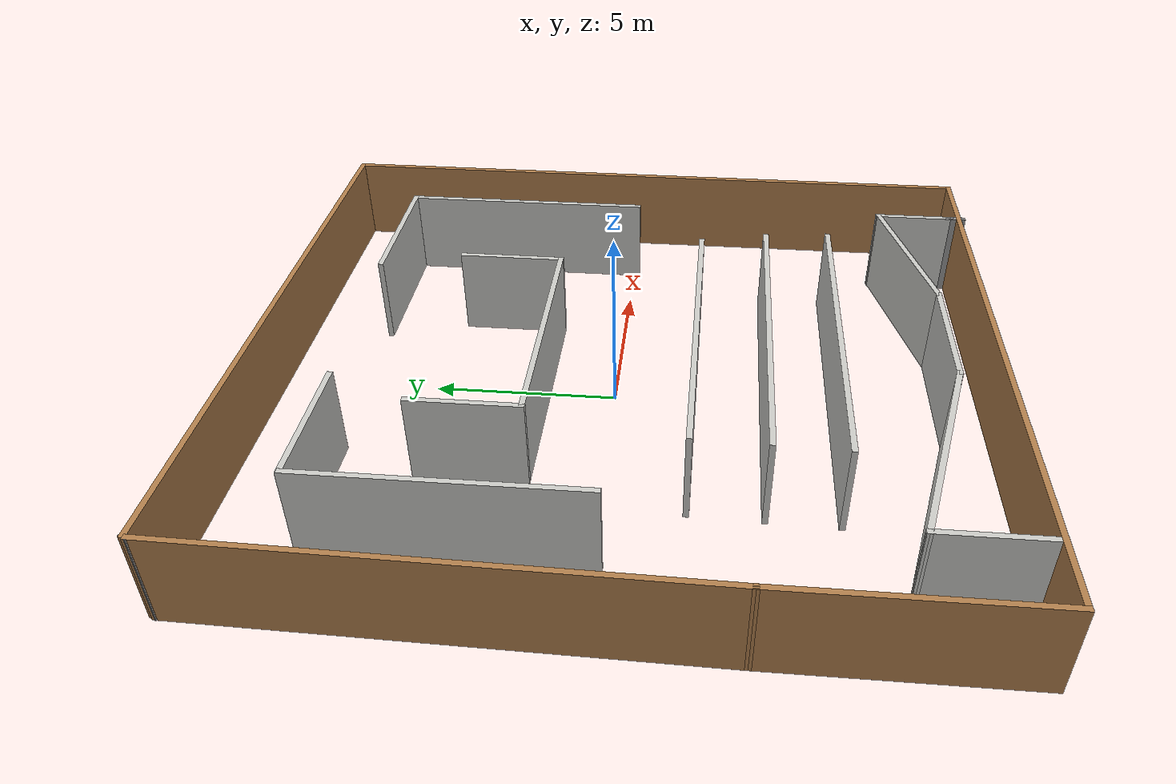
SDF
<?xml version='1.0'?>
<sdf version='1.7'>
  <model name='indoor.world'>
    <pose>-0.019262 -0.36575 0 0 -0 0</pose>
    <link name='Wall_10'>
      <collision name='Wall_10_Collision'>
        <geometry>
          <box>
            <size>13.0649 0.15 2.5</size>
          </box>
        </geometry>
        <pose>0 0 1.25 0 -0 0</pose>
      </collision>
      <visual name='Wall_10_Visual'>
        <pose>0 0 1.25 0 -0 0</pose>
        <geometry>
          <box>
            <size>13.0649 0.15 2.5</size>
          </box>
        </geometry>
        <material>
          <script>
            <uri>file://media/materials/scripts/gazebo.material</uri>
            <name>Gazebo/Wood</name>
          </script>
          <ambient>1 1 1 1</ambient>
        </material>
        <meta>
          <layer>0</layer>
        </meta>
      </visual>
      <pose>-8.69942 3.18069 0 0 -0 -1.58628</pose>
    </link>
    <link name='Wall_12'>
      <collision name='Wall_12_Collision'>
        <geometry>
          <box>
            <size>10 0.15 2.5</size>
          </box>
        </geometry>
        <pose>0 0 1.25 0 -0 0</pose>
      </collision>
      <visual name='Wall_12_Visual'>
        <pose>0 0 1.25 0 -0 0</pose>
        <geometry>
          <box>
            <size>10 0.15 2.5</size>
          </box>
        </geometry>
        <material>
          <script>
            <uri>file://media/materials/scripts/gazebo.material</uri>
            <name>Gazebo/CeilingTiled</name>
          </script>
          <ambient>1 1 1 1</ambient>
        </material>
        <meta>
          <layer>0</layer>
        </meta>
      </visual>
      <pose>0.416334 -5.54014 0 0 -0 0</pose>
    </link>
    <link name='Wall_14'>
      <collision name='Wall_14_Collision'>
        <geometry>
          <box>
            <size>9.75 0.15 2.5</size>
          </box>
        </geometry>
        <pose>0 0 1.25 0 -0 0</pose>
      </collision>
      <visual name='Wall_14_Visual'>
        <pose>0 0 1.25 0 -0 0</pose>
        <geometry>
          <box>
            <size>9.75 0.15 2.5</size>
          </box>
        </geometry>
        <material>
          <script>
            <uri>file://media/materials/scripts/gazebo.material</uri>
            <name>Gazebo/CeilingTiled</name>
          </script>
          <ambient>1 1 1 1</ambient>
        </material>
        <meta>
          <layer>0</layer>
        </meta>
      </visual>
      <pose>0.352862 -3.6943 0 0 -0 0</pose>
    </link>
    <link name='Wall_16'>
      <collision name='Wall_16_Collision'>
        <geometry>
          <box>
            <size>9.25 0.15 2.5</size>
          </box>
        </geometry>
        <pose>0 0 1.25 0 -0 0</pose>
      </collision>
      <visual name='Wall_16_Visual'>
        <pose>0 0 1.25 0 -0 0</pose>
        <geometry>
          <box>
            <size>9.25 0.15 2.5</size>
          </box>
        </geometry>
        <material>
          <script>
            <uri>file://media/materials/scripts/gazebo.material</uri>
            <name>Gazebo/CeilingTiled</name>
          </script>
          <ambient>1 1 1 1</ambient>
        </material>
        <meta>
          <layer>0</layer>
        </meta>
      </visual>
      <pose>0.16439 -1.78694 0 0 -0 0</pose>
    </link>
    <link name='Wall_18'>
      <collision name='Wall_18_Collision'>
        <geometry>
          <box>
            <size>7.25 0.15 2.5</size>
          </box>
        </geometry>
        <pose>0 0 1.25 0 -0 0</pose>
      </collision>
      <visual name='Wall_18_Visual'>
        <pose>0 0 1.25 0 -0 0</pose>
        <geometry>
          <box>
            <size>7.25 0.15 2.5</size>
          </box>
        </geometry>
        <material>
          <script>
            <uri>file://media/materials/scripts/gazebo.material</uri>
            <name>Gazebo/CeilingTiled</name>
          </script>
          <ambient>1 1 1 1</ambient>
        </material>
        <meta>
          <layer>0</layer>
        </meta>
      </visual>
      <pose>-6.3545 3.67043 0 0 -0 1.5708</pose>
    </link>
    <link name='Wall_19'>
      <collision name='Wall_19_Collision'>
        <geometry>
          <box>
            <size>3.75 0.15 2.5</size>
          </box>
        </geometry>
        <pose>0 0 1.25 0 -0 0</pose>
      </collision>
      <visual name='Wall_19_Visual'>
        <pose>0 0 1.25 0 -0 0</pose>
        <geometry>
          <box>
            <size>3.75 0.15 2.5</size>
          </box>
        </geometry>
        <material>
          <script>
            <uri>file://media/materials/scripts/gazebo.material</uri>
            <name>Gazebo/CeilingTiled</name>
          </script>
          <ambient>1 1 1 1</ambient>
        </material>
        <meta>
          <layer>0</layer>
        </meta>
      </visual>
      <pose>-4.5545 7.22043 0 0 -0 0</pose>
    </link>
    <link name='Wall_22'>
      <collision name='Wall_22_Collision'>
        <geometry>
          <box>
            <size>4.25 0.15 2.5</size>
          </box>
        </geometry>
        <pose>0 0 1.25 0 -0 0</pose>
      </collision>
      <visual name='Wall_22_Visual'>
        <pose>0 0 1.25 0 -0 0</pose>
        <geometry>
          <box>
            <size>4.25 0.15 2.5</size>
          </box>
        </geometry>
        <material>
          <script>
            <uri>file://media/materials/scripts/gazebo.material</uri>
            <name>Gazebo/CeilingTiled</name>
          </script>
          <ambient>1 1 1 1</ambient>
        </material>
        <meta>
          <layer>0</layer>
        </meta>
      </visual>
      <pose>4.61704 7.38072 0 0 -0 0</pose>
    </link>
    <link name='Wall_23'>
      <collision name='Wall_23_Collision'>
        <geometry>
          <box>
            <size>7.25 0.15 2.5</size>
          </box>
        </geometry>
        <pose>0 0 1.25 0 -0 0</pose>
      </collision>
      <visual name='Wall_23_Visual'>
        <pose>0 0 1.25 0 -0 0</pose>
        <geometry>
          <box>
            <size>7.25 0.15 2.5</size>
          </box>
        </geometry>
        <material>
          <script>
            <uri>file://media/materials/scripts/gazebo.material</uri>
            <name>Gazebo/CeilingTiled</name>
          </script>
          <ambient>1 1 1 1</ambient>
        </material>
        <meta>
          <layer>0</layer>
        </meta>
      </visual>
      <pose>6.66704 3.83072 0 0 -0 -1.5708</pose>
    </link>
    <link name='Wall_25'>
      <collision name='Wall_25_Collision'>
        <geometry>
          <box>
            <size>3 0.15 2.5</size>
          </box>
        </geometry>
        <pose>0 0 1.25 0 -0 0</pose>
      </collision>
      <visual name='Wall_25_Visual'>
        <pose>0 0 1.25 0 -0 0</pose>
        <geometry>
          <box>
            <size>3 0.15 2.5</size>
          </box>
        </geometry>
        <material>
          <script>
            <uri>file://media/materials/scripts/gazebo.material</uri>
            <name>Gazebo/CeilingTiled</name>
          </script>
          <ambient>1 1 1 1</ambient>
        </material>
        <meta>
          <layer>0</layer>
        </meta>
      </visual>
      <pose>-3.58575 3.67918 0 0 -0 -1.5708</pose>
    </link>
    <link name='Wall_26'>
      <collision name='Wall_26_Collision'>
        <geometry>
          <box>
            <size>7 0.15 2.5</size>
          </box>
        </geometry>
        <pose>0 0 1.25 0 -0 0</pose>
      </collision>
      <visual name='Wall_26_Visual'>
        <pose>0 0 1.25 0 -0 0</pose>
        <geometry>
          <box>
            <size>7 0.15 2.5</size>
          </box>
        </geometry>
        <material>
          <script>
            <uri>file://media/materials/scripts/gazebo.material</uri>
            <name>Gazebo/CeilingTiled</name>
          </script>
          <ambient>1 1 1 1</ambient>
        </material>
        <meta>
          <layer>0</layer>
        </meta>
      </visual>
      <pose>-0.160748 2.25419 0 0 -0 0</pose>
    </link>
    <link name='Wall_27'>
      <collision name='Wall_27_Collision'>
        <geometry>
          <box>
            <size>3 0.15 2.5</size>
          </box>
        </geometry>
        <pose>0 0 1.25 0 -0 0</pose>
      </collision>
      <visual name='Wall_27_Visual'>
        <pose>0 0 1.25 0 -0 0</pose>
        <geometry>
          <box>
            <size>3 0.15 2.5</size>
          </box>
        </geometry>
        <material>
          <script>
            <uri>file://media/materials/scripts/gazebo.material</uri>
            <name>Gazebo/CeilingTiled</name>
          </script>
          <ambient>1 1 1 1</ambient>
        </material>
        <meta>
          <layer>0</layer>
        </meta>
      </visual>
      <pose>3.26425 3.67918 0 0 -0 1.5708</pose>
    </link>
    <link name='Wall_29'>
      <collision name='Wall_29_Collision'>
        <geometry>
          <box>
            <size>2.75 0.15 2.5</size>
          </box>
        </geometry>
        <pose>0 0 1.25 0 -0 0</pose>
      </collision>
      <visual name='Wall_29_Visual'>
        <pose>0 0 1.25 0 -0 0</pose>
        <geometry>
          <box>
            <size>2.75 0.15 2.5</size>
          </box>
        </geometry>
        <material>
          <script>
            <uri>file://media/materials/scripts/gazebo.material</uri>
            <name>Gazebo/CeilingTiled</name>
          </script>
          <ambient>1 1 1 1</ambient>
        </material>
        <meta>
          <layer>0</layer>
        </meta>
      </visual>
      <pose>-6.96978 -8.17792 0 0 -0 1.5708</pose>
    </link>
    <link name='Wall_30'>
      <collision name='Wall_30_Collision'>
        <geometry>
          <box>
            <size>6 0.15 2.5</size>
          </box>
        </geometry>
        <pose>0 0 1.25 0 -0 0</pose>
      </collision>
      <visual name='Wall_30_Visual'>
        <pose>0 0 1.25 0 -0 0</pose>
        <geometry>
          <box>
            <size>6 0.15 2.5</size>
          </box>
        </geometry>
        <material>
          <script>
            <uri>file://media/materials/scripts/gazebo.material</uri>
            <name>Gazebo/CeilingTiled</name>
          </script>
          <ambient>1 1 1 1</ambient>
        </material>
        <meta>
          <layer>0</layer>
        </meta>
      </visual>
      <pose>-4.14445 -7.63497 0 0 -0 -0.261799</pose>
    </link>
    <link name='Wall_31'>
      <collision name='Wall_31_Collision'>
        <geometry>
          <box>
            <size>3.75 0.15 2.5</size>
          </box>
        </geometry>
        <pose>0 0 1.25 0 -0 0</pose>
      </collision>
      <visual name='Wall_31_Visual'>
        <pose>0 0 1.25 0 -0 0</pose>
        <geometry>
          <box>
            <size>3.75 0.15 2.5</size>
          </box>
        </geometry>
        <material>
          <script>
            <uri>file://media/materials/scripts/gazebo.material</uri>
            <name>Gazebo/CeilingTiled</name>
          </script>
          <ambient>1 1 1 1</ambient>
        </material>
        <meta>
          <layer>0</layer>
        </meta>
      </visual>
      <pose>0.480885 -8.39201 0 0 -0 0</pose>
    </link>
    <link name='Wall_32'>
      <collision name='Wall_32_Collision'>
        <geometry>
          <box>
            <size>4.75 0.15 2.5</size>
          </box>
        </geometry>
        <pose>0 0 1.25 0 -0 0</pose>
      </collision>
      <visual name='Wall_32_Visual'>
        <pose>0 0 1.25 0 -0 0</pose>
        <geometry>
          <box>
            <size>4.75 0.15 2.5</size>
          </box>
        </geometry>
        <material>
          <script>
            <uri>file://media/materials/scripts/gazebo.material</uri>
            <name>Gazebo/CeilingTiled</name>
          </script>
          <ambient>1 1 1 1</ambient>
        </material>
        <meta>
          <layer>0</layer>
        </meta>
      </visual>
      <pose>4.50251 -7.79673 0 0 -0 0.261799</pose>
    </link>
    <link name='Wall_33'>
      <collision name='Wall_33_Collision'>
        <geometry>
          <box>
            <size>2.25 0.15 2.5</size>
          </box>
        </geometry>
        <pose>0 0 1.25 0 -0 0</pose>
      </collision>
      <visual name='Wall_33_Visual'>
        <pose>0 0 1.25 0 -0 0</pose>
        <geometry>
          <box>
            <size>2.25 0.15 2.5</size>
          </box>
        </geometry>
        <material>
          <script>
            <uri>file://media/materials/scripts/gazebo.material</uri>
            <name>Gazebo/CeilingTiled</name>
          </script>
          <ambient>1 1 1 1</ambient>
        </material>
        <meta>
          <layer>0</layer>
        </meta>
      </visual>
      <pose>6.72414 -8.25145 0 0 -0 -1.5708</pose>
    </link>
    <link name='Wall_34'>
      <collision name='Wall_34_Collision'>
        <geometry>
          <box>
            <size>0.25 0.15 2.5</size>
          </box>
        </geometry>
        <pose>0 0 1.25 0 -0 0</pose>
      </collision>
      <visual name='Wall_34_Visual'>
        <pose>0 0 1.25 0 -0 0</pose>
        <geometry>
          <box>
            <size>0.25 0.15 2.5</size>
          </box>
        </geometry>
        <material>
          <script>
            <uri>file://media/materials/scripts/gazebo.material</uri>
            <name>Gazebo/Grey</name>
          </script>
          <ambient>1 1 1 1</ambient>
        </material>
        <meta>
          <layer>0</layer>
        </meta>
      </visual>
      <pose>6.72414 -9.35145 0 0 -0 -1.5708</pose>
    </link>
    <link name='Wall_35'>
      <collision name='Wall_35_Collision'>
        <geometry>
          <box>
            <size>0.5 0.15 2.5</size>
          </box>
        </geometry>
        <pose>0 0 1.25 0 -0 0</pose>
      </collision>
      <visual name='Wall_35_Visual'>
        <pose>0 0 1.25 0 -0 0</pose>
        <geometry>
          <box>
            <size>0.5 0.15 2.5</size>
          </box>
        </geometry>
        <material>
          <script>
            <uri>file://media/materials/scripts/gazebo.material</uri>
            <name>Gazebo/Grey</name>
          </script>
          <ambient>1 1 1 1</ambient>
        </material>
        <meta>
          <layer>0</layer>
        </meta>
      </visual>
      <pose>6.72414 -9.57644 0 0 -0 -1.5708</pose>
    </link>
    <link name='Wall_5'>
      <collision name='Wall_5_Collision'>
        <geometry>
          <box>
            <size>6.5 0.15 2.5</size>
          </box>
        </geometry>
        <pose>0 0 1.25 0 -0 0</pose>
      </collision>
      <visual name='Wall_5_Visual'>
        <pose>0 0 1.25 0 -0 0</pose>
        <geometry>
          <box>
            <size>6.5 0.15 2.5</size>
          </box>
        </geometry>
        <material>
          <script>
            <uri>file://media/materials/scripts/gazebo.material</uri>
            <name>Gazebo/Wood</name>
          </script>
          <ambient>1 1 1 1</ambient>
        </material>
        <meta>
          <layer>0</layer>
        </meta>
      </visual>
      <pose>-8.79942 -6.45101 0 0 -0 -1.5708</pose>
    </link>
    <link name='Wall_6'>
      <collision name='Wall_6_Collision'>
        <geometry>
          <box>
            <size>17.75 0.15 2.5</size>
          </box>
        </geometry>
        <pose>0 0 1.25 0 -0 0</pose>
      </collision>
      <visual name='Wall_6_Visual'>
        <pose>0 0 1.25 0 -0 0</pose>
        <geometry>
          <box>
            <size>17.75 0.15 2.5</size>
          </box>
        </geometry>
        <material>
          <script>
            <uri>file://media/materials/scripts/gazebo.material</uri>
            <name>Gazebo/Wood</name>
          </script>
          <ambient>1 1 1 1</ambient>
        </material>
        <meta>
          <layer>0</layer>
        </meta>
      </visual>
      <pose>0.000576 -9.62601 0 0 -0 0</pose>
    </link>
    <link name='Wall_7'>
      <collision name='Wall_7_Collision'>
        <geometry>
          <box>
            <size>19.5 0.15 2.5</size>
          </box>
        </geometry>
        <pose>0 0 1.25 0 -0 0</pose>
      </collision>
      <visual name='Wall_7_Visual'>
        <pose>0 0 1.25 0 -0 0</pose>
        <geometry>
          <box>
            <size>19.5 0.15 2.5</size>
          </box>
        </geometry>
        <material>
          <script>
            <uri>file://media/materials/scripts/gazebo.material</uri>
            <name>Gazebo/Wood</name>
          </script>
          <ambient>1 1 1 1</ambient>
        </material>
        <meta>
          <layer>0</layer>
        </meta>
      </visual>
      <pose>8.80058 0.048994 0 0 -0 1.5708</pose>
    </link>
    <link name='Wall_8'>
      <collision name='Wall_8_Collision'>
        <geometry>
          <box>
            <size>17.5 0.15 2.5</size>
          </box>
        </geometry>
        <pose>0 0 1.25 0 -0 0</pose>
      </collision>
      <visual name='Wall_8_Visual'>
        <pose>0 0 1.25 0 -0 0</pose>
        <geometry>
          <box>
            <size>17.5 0.15 2.5</size>
          </box>
        </geometry>
        <material>
          <script>
            <uri>file://media/materials/scripts/gazebo.material</uri>
            <name>Gazebo/Wood</name>
          </script>
          <ambient>1 1 1 1</ambient>
        </material>
        <meta>
          <layer>0</layer>
        </meta>
      </visual>
      <pose>0.125576 9.72399 0 0 -0 3.14159</pose>
    </link>
    <link name='Wall_9'>
      <collision name='Wall_9_Collision'>
        <geometry>
          <box>
            <size>0.25 0.15 2.5</size>
          </box>
        </geometry>
        <pose>0 0 1.25 0 -0 0</pose>
      </collision>
      <visual name='Wall_9_Visual'>
        <pose>0 0 1.25 0 -0 0</pose>
        <geometry>
          <box>
            <size>0.25 0.15 2.5</size>
          </box>
        </geometry>
        <material>
          <script>
            <uri>file://media/materials/scripts/gazebo.material</uri>
            <name>Gazebo/Grey</name>
          </script>
          <ambient>1 1 1 1</ambient>
        </material>
        <meta>
          <layer>0</layer>
        </meta>
      </visual>
      <pose>-8.57442 9.68069 0 0 -0 -2.0944</pose>
    </link>
    <static>1</static>
  </model>
</sdf>
